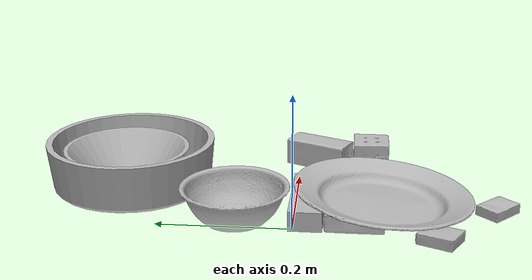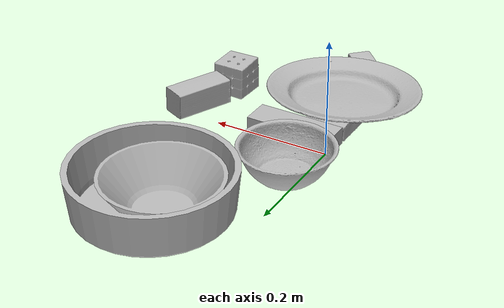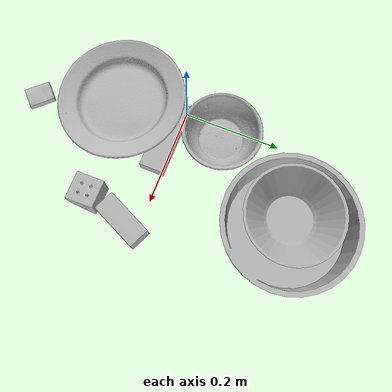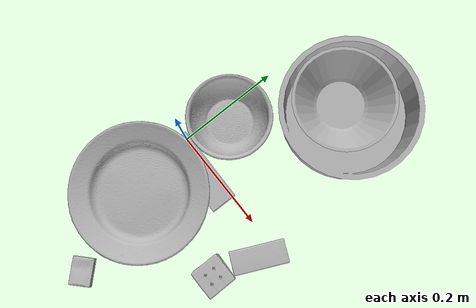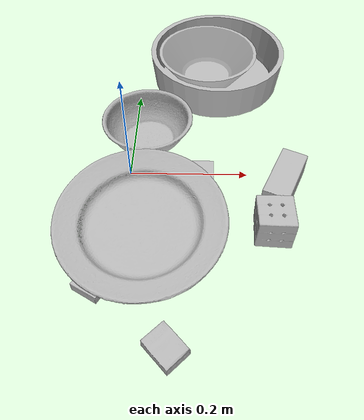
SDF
<sdf version="1.4">
  <world name="default">
    <light name="light1" type="point">
      <pose>0 0 1 0 0 0</pose>
      <diffuse>3 3 3 1</diffuse>
      <specular>3 3 3 1</specular>
    </light>
    <light name="light2" type="point">
      <pose>0 0.5 2 0 0 0</pose>
      <diffuse>1 1 1 1</diffuse>
      <specular>1 1 1 1</specular>
    </light>
    <light name="light3" type="point">
      <pose>0 0.5 2 0 0 0</pose>
      <diffuse>3 3 3 1</diffuse>
      <specular>3 3 3 1</specular>
    </light>
    <scene>
      <ambient>0.7 0.7 0.7</ambient>
    </scene>
    <model name="box1">
      <link name="link_box1">
        <collision name="default">
          <geometry>
            <mesh>
              <uri>model://pudding_box/collision_meshes/collision.obj</uri>
              <scale>0.5 0.5 0.5</scale>
            </mesh>
          </geometry>
          <surface>
            <friction>
              <ode>
                <mu>0.5</mu>
                <mu2>0.5</mu2>
              </ode>
            </friction>
          <contact>
        <ode>
            <max_vel>0</max_vel>
            <min_depth>0.0001</min_depth>
            <kp>1e8</kp>
        </ode>
    </contact></surface>
        </collision>
        <visual name="default">
          <geometry>
            <mesh>
              <uri>model://pudding_box/visual_meshes/visual.dae</uri>
              <scale>0.5 0.5 0.5</scale>
            </mesh>
          </geometry>
        </visual>
        <inertial>
          <mass>0.06043573096394539</mass>
          <pose>0.0002447410661261529 0.00040339428232982755 -0.0002594413817860186 0.005213102238104987 -0.006603800125102895 0.020079827017580043</pose>
          <inertia>
            <ixx>1.707987e-05</ixx>
            <iyy>1.1491458e-05</iyy>
            <izz>2.522289e-05</izz>
            <ixy>0</ixy>
            <ixz>0</ixz>
            <iyz>0</iyz>
          </inertia>
        </inertial>
      </link>
      <pose>-0.028618207201361656 -0.2077808380126953 0.00986290443688631 0.022348610753770697 -0.011391640304886964 2.6472858377622748</pose>
    </model>
    <model name="box11">
      <link name="link_box11">
        <collision name="default">
          <geometry>
            <mesh>
              <uri>model://wood_block/collision_meshes/collision.obj</uri>
              <scale>0.5 0.5 0.5</scale>
            </mesh>
          </geometry>
          <surface>
            <friction>
              <ode>
                <mu>0.5</mu>
                <mu2>0.5</mu2>
              </ode>
            </friction>
          <contact>
        <ode>
            <max_vel>0</max_vel>
            <min_depth>0.0001</min_depth>
            <kp>1e8</kp>
        </ode>
    </contact></surface>
        </collision>
        <visual name="default">
          <geometry>
            <mesh>
              <uri>model://wood_block/visual_meshes/visual.dae</uri>
              <scale>0.5 0.5 0.5</scale>
            </mesh>
          </geometry>
        </visual>
        <inertial>
          <mass>0.22556793689727783</mass>
          <pose>-2.9066577553749084e-06 -0.000285404734313488 0.00013204290007706732 -0.05220975528916272 -0.005192696013017626 -0.0068613779154948285</pose>
          <inertia>
            <ixx>7.5461e-05</ixx>
            <iyy>0.00023838133</iyy>
            <izz>0.00023748967</izz>
            <ixy>0</ixy>
            <ixz>0</ixz>
            <iyz>0</iyz>
          </inertia>
        </inertial>
      </link>
      <pose>0.25813019275665283 -0.03138761222362518 0.022629261016845703 -0.005208415876083337 0.005718689747940703 -1.9995974221340198</pose>
    </model>
    <model name="box2">
      <link name="link_box2">
        <collision name="default">
          <geometry>
            <mesh>
              <uri>model://jenga/collision_meshes/collision.obj</uri>
              <scale>1.0 1.0 1.0</scale>
            </mesh>
          </geometry>
          <surface>
            <friction>
              <ode>
                <mu>0.5</mu>
                <mu2>0.5</mu2>
              </ode>
            </friction>
          <contact>
        <ode>
            <max_vel>0</max_vel>
            <min_depth>0.0001</min_depth>
            <kp>1e8</kp>
        </ode>
    </contact></surface>
        </collision>
        <visual name="default">
          <geometry>
            <mesh>
              <uri>model://jenga/visual_meshes/visual.dae</uri>
              <scale>1.0 1.0 1.0</scale>
            </mesh>
          </geometry>
        </visual>
        <inertial>
          <mass>0.2534179985523224</mass>
          <pose>-2.502856091268768e-07 -0.00010250010382151231 -4.0923401684267446e-05 0.0 -7.342154049184251e-07 0.0</pose>
          <inertia>
            <ixx>7.012692e-05</ixx>
            <iyy>0.00047517804</iyy>
            <izz>0.000507293</izz>
            <ixy>0</ixy>
            <ixz>0</ixz>
            <iyz>0</iyz>
          </inertia>
        </inertial>
      </link>
      <pose>0.06678882241249084 -0.019481144845485687 0.014999954029917717 -2.3861565495414185e-05 1.2136205118857761e-06 -0.011882028663653307</pose>
    </model>
    <model name="box21">
      <link name="link_box21">
        <collision name="default">
          <geometry>
            <mesh>
              <uri>model://cracker_box/collision_meshes/collision.obj</uri>
              <scale>0.25 0.25 0.25</scale>
            </mesh>
          </geometry>
          <surface>
            <friction>
              <ode>
                <mu>0.5</mu>
                <mu2>0.5</mu2>
              </ode>
            </friction>
          <contact>
        <ode>
            <max_vel>0</max_vel>
            <min_depth>0.0001</min_depth>
            <kp>1e8</kp>
        </ode>
    </contact></surface>
        </collision>
        <visual name="default">
          <geometry>
            <mesh>
              <uri>model://cracker_box/visual_meshes/visual.dae</uri>
              <scale>0.25 0.25 0.25</scale>
            </mesh>
          </geometry>
        </visual>
        <inertial>
          <mass>0.04045860841870308</mass>
          <pose>0.0002366030093980953 6.358561950037256e-05 -0.0004257383698131889 -0.0003162076898946344 -0.011106488668808423 0.0025467959335197018</pose>
          <inertia>
            <ixx>6.4317906e-06</ixx>
            <iyy>1.062015e-05</iyy>
            <izz>1.5155927e-05</izz>
            <ixy>0</ixy>
            <ixz>0</ixz>
            <iyz>0</iyz>
          </inertia>
        </inertial>
      </link>
      <pose>0.07648693025112152 -0.30165329575538635 0.009120453149080276 -0.011788238552488728 -0.007367277026300998 -0.8103257936390259</pose>
    </model>
    <model name="box3">
      <link name="link_box3">
        <collision name="default">
          <geometry>
            <mesh>
              <uri>model://rubiks_cube/collision_meshes/collision.obj</uri>
              <scale>1.0 1.0 1.0</scale>
            </mesh>
          </geometry>
          <surface>
            <friction>
              <ode>
                <mu>0.5</mu>
                <mu2>0.5</mu2>
              </ode>
            </friction>
          <contact>
        <ode>
            <max_vel>0</max_vel>
            <min_depth>0.0001</min_depth>
            <kp>1e8</kp>
        </ode>
    </contact></surface>
        </collision>
        <visual name="default">
          <geometry>
            <mesh>
              <uri>model://rubiks_cube/visual_meshes/visual.dae</uri>
              <scale>1.0 1.0 1.0</scale>
            </mesh>
          </geometry>
        </visual>
        <inertial>
          <mass>0.12779320776462555</mass>
          <pose>2.6721041649580002e-05 5.2569666877388954e-05 -7.264316082000732e-06 -0.054672129212199855 -0.09814057073985563 -0.03445704008669109</pose>
          <inertia>
            <ixx>7.061434e-05</ixx>
            <iyy>7.0285016e-05</iyy>
            <izz>7.119949e-05</izz>
            <ixy>0</ixy>
            <ixz>0</ixz>
            <iyz>0</iyz>
          </inertia>
        </inertial>
      </link>
      <pose>0.23309265077114105 -0.11591684818267822 0.028679002076387405 2.9797149304745474e-10 -1.028840597392775e-08 1.5608795071370274</pose>
    </model>
    <model name="box31">
      <link name="link_box31">
        <collision name="default">
          <geometry>
            <mesh>
              <uri>model://gelatin_box/collision_meshes/collision.obj</uri>
              <scale>1.0 1.0 1.0</scale>
            </mesh>
          </geometry>
          <surface>
            <friction>
              <ode>
                <mu>0.5</mu>
                <mu2>0.5</mu2>
              </ode>
            </friction>
          <contact>
        <ode>
            <max_vel>0</max_vel>
            <min_depth>0.0001</min_depth>
            <kp>1e8</kp>
        </ode>
    </contact></surface>
        </collision>
        <visual name="default">
          <geometry>
            <mesh>
              <uri>model://gelatin_box/visual_meshes/visual.dae</uri>
              <scale>1.0 1.0 1.0</scale>
            </mesh>
          </geometry>
        </visual>
        <inertial>
          <mass>0.20050984621047974</mass>
          <pose>0.0004319618456065655 0.00011156872642459348 -0.00036403213744051754 -0.0010503720853528096 -0.004755817758068365 0.016440559471334753</pose>
          <inertia>
            <ixx>0.00014154361</ixx>
            <iyy>0.00010110386</iyy>
            <izz>0.0002154609</izz>
            <ixy>0</ixy>
            <ixz>0</ixz>
            <iyz>0</iyz>
          </inertia>
        </inertial>
      </link>
      <pose>0.025796543806791306 -0.08866038918495178 0.015170128084719181 0.005457147816422718 -0.007127983214019863 3.12821654198748</pose>
    </model>
    <model name="plate1">
      <link name="link_plate1">
        <collision name="default">
          <geometry>
            <mesh>
              <uri>model://pan_tefal/collision_meshes/collision.obj</uri>
              <scale>1.0 1.0 1.0</scale>
            </mesh>
          </geometry>
          <surface>
            <friction>
              <ode>
                <mu>0.5</mu>
                <mu2>0.5</mu2>
              </ode>
            </friction>
          <contact>
        <ode>
            <max_vel>0</max_vel>
            <min_depth>0.0001</min_depth>
            <kp>1e8</kp>
        </ode>
    </contact></surface>
        </collision>
        <visual name="default">
          <geometry>
            <mesh>
              <uri>model://pan_tefal/visual_meshes/visual.dae</uri>
              <scale>1.0 1.0 1.0</scale>
            </mesh>
          </geometry>
        </visual>
        <inertial>
          <mass>0.9166961908340454</mass>
          <pose>-0.00018002631259150803 3.279098018538207e-05 -0.00851493515074253 0.0008190256602529888 -0.0003301357182707761 -0.33185348708971</pose>
          <inertia>
            <ixx>0.006327908</ixx>
            <iyy>0.006368705</iyy>
            <izz>0.01164846</izz>
            <ixy>0</ixy>
            <ixz>0</ixz>
            <iyz>0</iyz>
          </inertia>
        </inertial>
      </link>
      <pose>0.1519765853881836 0.2665674686431885 0.038050007075071335 -2.597301123449731e-07 -1.4628764917554564e-07 2.753665045177336</pose>
    </model>
    <model name="bowl1">
      <link name="link_bowl1">
        <collision name="default">
          <geometry>
            <mesh>
              <uri>model://bowl_a/collision_meshes/collision.obj</uri>
              <scale>1.0 1.0 1.0</scale>
            </mesh>
          </geometry>
          <surface>
            <friction>
              <ode>
                <mu>0.5</mu>
                <mu2>0.5</mu2>
              </ode>
            </friction>
          <contact>
        <ode>
            <max_vel>0</max_vel>
            <min_depth>0.0001</min_depth>
            <kp>1e8</kp>
        </ode>
    </contact></surface>
        </collision>
        <visual name="default">
          <geometry>
            <mesh>
              <uri>model://bowl_a/visual_meshes/visual.dae</uri>
              <scale>1.0 1.0 1.0</scale>
            </mesh>
          </geometry>
        </visual>
        <inertial>
          <mass>0.44606471061706543</mass>
          <pose>0.0002786746481433511 4.7312179958680645e-05 -0.0013765294570475817 -0.0009805488171165768 -0.0010938123304380014 -0.19122487556540352</pose>
          <inertia>
            <ixx>0.0012699668</ixx>
            <iyy>0.001277764</iyy>
            <izz>0.0022586845</izz>
            <ixy>0</ixy>
            <ixz>0</ixz>
            <iyz>0</iyz>
          </inertia>
        </inertial>
      </link>
      <pose>0.1331249326467514 0.2691791355609894 0.038192231208086014 -0.001872176958391712 0.00012764530561716232 -0.6681897123142806</pose>
    </model>
    <model name="plate2">
      <link name="link_plate2">
        <collision name="default">
          <geometry>
            <mesh>
              <uri>model://plate/collision_meshes/collision.obj</uri>
              <scale>1.0 1.0 1.0</scale>
            </mesh>
          </geometry>
          <surface>
            <friction>
              <ode>
                <mu>0.5</mu>
                <mu2>0.5</mu2>
              </ode>
            </friction>
          <contact>
        <ode>
            <max_vel>0</max_vel>
            <min_depth>0.0001</min_depth>
            <kp>1e8</kp>
        </ode>
    </contact></surface>
        </collision>
        <visual name="default">
          <geometry>
            <mesh>
              <uri>model://plate/visual_meshes/visual.dae</uri>
              <scale>1.0 1.0 1.0</scale>
            </mesh>
          </geometry>
        </visual>
        <inertial>
          <mass>0.10088177025318146</mass>
          <pose>-0.0006044645560905337 0.0002782582596410066 -0.0010561994276940823 0.002218810424575964 -0.003225458488037908 0.4526011088858205</pose>
          <inertia>
            <ixx>0.00047192685</ixx>
            <iyy>0.00046741302</iyy>
            <izz>0.00092301855</izz>
            <ixy>0</ixy>
            <ixz>0</ixz>
            <iyz>0</iyz>
          </inertia>
        </inertial>
      </link>
      <pose>0.03182656690478325 -0.12929362058639526 0.04081901162862778 0.031976283964777884 -0.07020822528570823 1.2295494383573384</pose>
    </model>
    <model name="bowl2">
      <link name="link_bowl2">
        <collision name="default">
          <geometry>
            <mesh>
              <uri>model://bowl/collision_meshes/collision.obj</uri>
              <scale>1.0 1.0 1.0</scale>
            </mesh>
          </geometry>
          <surface>
            <friction>
              <ode>
                <mu>0.5</mu>
                <mu2>0.5</mu2>
              </ode>
            </friction>
          <contact>
        <ode>
            <max_vel>0</max_vel>
            <min_depth>0.0001</min_depth>
            <kp>1e8</kp>
        </ode>
    </contact></surface>
        </collision>
        <visual name="default">
          <geometry>
            <mesh>
              <uri>model://bowl/visual_meshes/visual.dae</uri>
              <scale>1.0 1.0 1.0</scale>
            </mesh>
          </geometry>
        </visual>
        <inertial>
          <mass>0.10570208728313446</mass>
          <pose>0.00020445376867428422 -0.00103021040558815 -0.000804263399913907 -0.015764090239829616 0.014546785988443214 0.7140402180265782</pose>
          <inertia>
            <ixx>0.00024280604</ixx>
            <iyy>0.0002373808</iyy>
            <izz>0.0004084832</izz>
            <ixy>0</ixy>
            <ixz>0</ixz>
            <iyz>0</iyz>
          </inertia>
        </inertial>
      </link>
      <pose>0.024981342256069183 0.08497563749551773 0.02778000757098198 -1.674788076657749e-07 3.0741333946767586e-07 0.6672044483767645</pose>
    </model>
  <physics type="ode">
      <max_contacts>50</max_contacts>
      <ode>
        <solver>
          <type>quick</type>
          <iters>75</iters>
        </solver>
        <constraints>
          <contact_max_correcting_vel>0</contact_max_correcting_vel>
          <contact_surface_layer>0</contact_surface_layer>
        </constraints>
      </ode>
    </physics></world>
</sdf>
